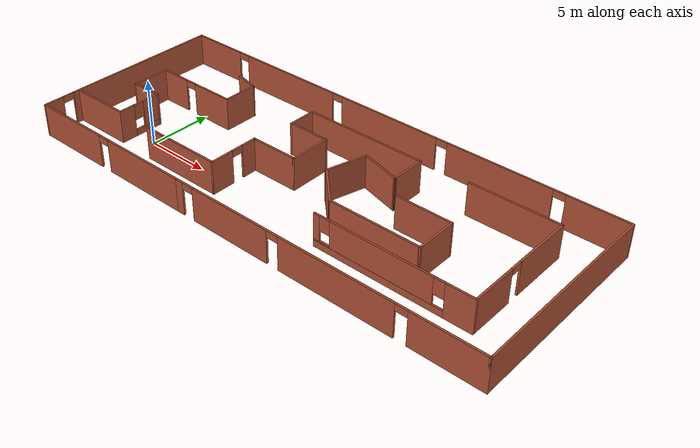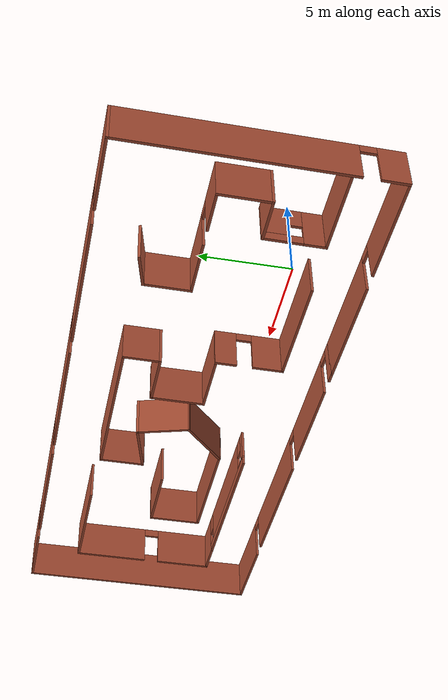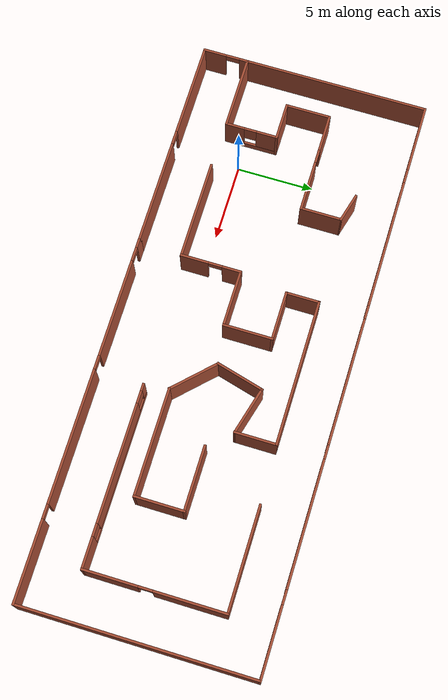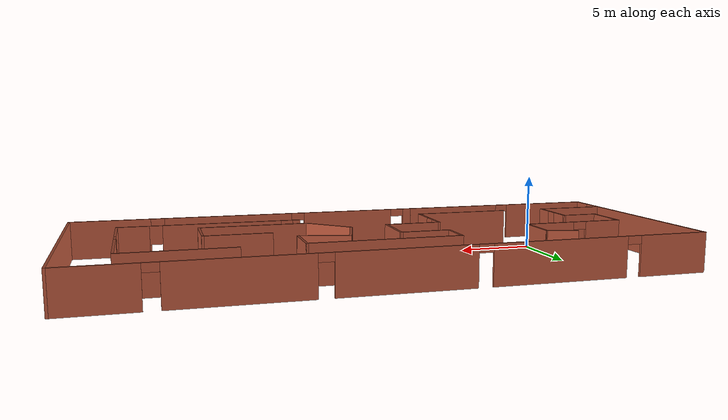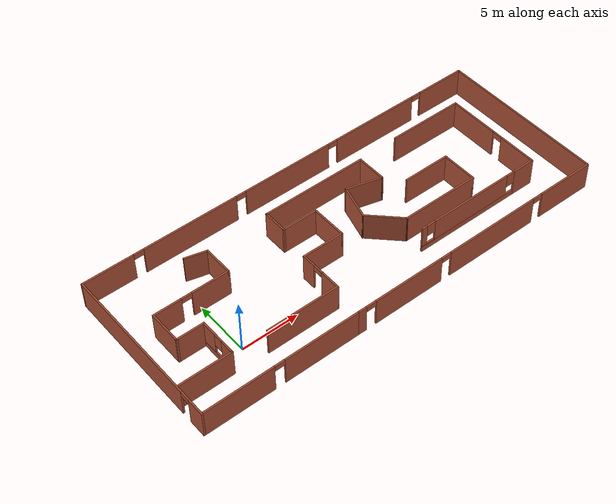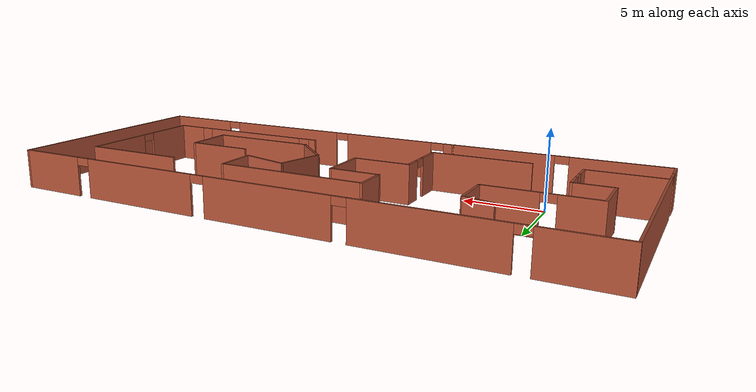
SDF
<?xml version='1.0'?>
<sdf version='1.5'>
  <model name='elektron_navigation_test'>
    <pose>12.265 3.185 0 0 -0 0</pose>
    <link name='Wall_1'>
      <pose>-11.725 -7.425 0 0 -0 0</pose>
      <visual name='Wall_1_Visual_0'>
        <pose>-3.85344 0 1.25 0 -0 0</pose>
        <geometry>
          <box>
            <size>6.04311 0.15 2.5</size>
          </box>
        </geometry>
        <material>
          <script>
            <uri>file://media/materials/scripts/gazebo.material</uri>
            <name>Gazebo/Bricks</name>
          </script>
          <ambient>0.996078 0.47451 0.0196078 1</ambient>
        </material>
      </visual>
      <collision name='Wall_1_Collision_0'>
        <geometry>
          <box>
            <size>6.04311 0.15 2.5</size>
          </box>
        </geometry>
        <pose>-3.85344 0 1.25 0 -0 0</pose>
      </collision>
      <visual name='Wall_1_Visual_1'>
        <pose>3.47156 0 1.25 0 -0 0</pose>
        <geometry>
          <box>
            <size>6.80689 0.15 2.5</size>
          </box>
        </geometry>
        <material>
          <script>
            <uri>file://media/materials/scripts/gazebo.material</uri>
            <name>Gazebo/Bricks</name>
          </script>
          <ambient>0.996078 0.47451 0.0196078 1</ambient>
        </material>
      </visual>
      <collision name='Wall_1_Collision_1'>
        <geometry>
          <box>
            <size>6.80689 0.15 2.5</size>
          </box>
        </geometry>
        <pose>3.47156 0 1.25 0 -0 0</pose>
      </collision>
      <visual name='Wall_1_Visual_2'>
        <pose>-0.381887 0 2.25 0 -0 0</pose>
        <geometry>
          <box>
            <size>0.9 0.15 0.5</size>
          </box>
        </geometry>
        <material>
          <script>
            <uri>file://media/materials/scripts/gazebo.material</uri>
            <name>Gazebo/Bricks</name>
          </script>
          <ambient>0.996078 0.47451 0.0196078 1</ambient>
        </material>
      </visual>
      <collision name='Wall_1_Collision_2'>
        <geometry>
          <box>
            <size>0.9 0.15 0.5</size>
          </box>
        </geometry>
        <pose>-0.381887 0 2.25 0 -0 0</pose>
      </collision>
    </link>
    <link name='Wall_10'>
      <collision name='Wall_10_Collision'>
        <geometry>
          <box>
            <size>3 0.15 2.5</size>
          </box>
        </geometry>
        <pose>0 0 1.25 0 -0 0</pose>
      </collision>
      <visual name='Wall_10_Visual'>
        <pose>0 0 1.25 0 -0 0</pose>
        <geometry>
          <box>
            <size>3 0.15 2.5</size>
          </box>
        </geometry>
        <material>
          <script>
            <uri>file://media/materials/scripts/gazebo.material</uri>
            <name>Gazebo/Bricks</name>
          </script>
          <ambient>1 1 1 1</ambient>
        </material>
      </visual>
      <pose>-16.3616 0.248937 0 0 -0 1.5708</pose>
    </link>
    <link name='Wall_11'>
      <pose>-13.0616 1.67394 0 0 -0 0</pose>
      <visual name='Wall_11_Visual_0'>
        <pose>-2.13139 0 1.25 0 -0 0</pose>
        <geometry>
          <box>
            <size>2.48722 0.15 2.5</size>
          </box>
        </geometry>
        <material>
          <script>
            <uri>file://media/materials/scripts/gazebo.material</uri>
            <name>Gazebo/Bricks</name>
          </script>
          <ambient>1 1 1 1</ambient>
        </material>
      </visual>
      <collision name='Wall_11_Collision_0'>
        <geometry>
          <box>
            <size>2.48722 0.15 2.5</size>
          </box>
        </geometry>
        <pose>-2.13139 0 1.25 0 -0 0</pose>
      </collision>
      <visual name='Wall_11_Visual_1'>
        <pose>1.69361 0 1.25 0 -0 0</pose>
        <geometry>
          <box>
            <size>3.36278 0.15 2.5</size>
          </box>
        </geometry>
        <material>
          <script>
            <uri>file://media/materials/scripts/gazebo.material</uri>
            <name>Gazebo/Bricks</name>
          </script>
          <ambient>1 1 1 1</ambient>
        </material>
      </visual>
      <collision name='Wall_11_Collision_1'>
        <geometry>
          <box>
            <size>3.36278 0.15 2.5</size>
          </box>
        </geometry>
        <pose>1.69361 0 1.25 0 -0 0</pose>
      </collision>
      <visual name='Wall_11_Visual_2'>
        <pose>-0.43778 0 2.25 0 -0 0</pose>
        <geometry>
          <box>
            <size>0.9 0.15 0.5</size>
          </box>
        </geometry>
        <material>
          <script>
            <uri>file://media/materials/scripts/gazebo.material</uri>
            <name>Gazebo/Bricks</name>
          </script>
          <ambient>1 1 1 1</ambient>
        </material>
      </visual>
      <collision name='Wall_11_Collision_2'>
        <geometry>
          <box>
            <size>0.9 0.15 0.5</size>
          </box>
        </geometry>
        <pose>-0.43778 0 2.25 0 -0 0</pose>
      </collision>
    </link>
    <link name='Wall_12'>
      <collision name='Wall_12_Collision'>
        <geometry>
          <box>
            <size>2.75 0.15 2.5</size>
          </box>
        </geometry>
        <pose>0 0 1.25 0 -0 0</pose>
      </collision>
      <visual name='Wall_12_Visual'>
        <pose>0 0 1.25 0 -0 0</pose>
        <geometry>
          <box>
            <size>2.75 0.15 2.5</size>
          </box>
        </geometry>
        <material>
          <script>
            <uri>file://media/materials/scripts/gazebo.material</uri>
            <name>Gazebo/Bricks</name>
          </script>
          <ambient>1 1 1 1</ambient>
        </material>
      </visual>
      <pose>-9.7616 2.97394 0 0 -0 1.5708</pose>
    </link>
    <link name='Wall_13'>
      <collision name='Wall_13_Collision'>
        <geometry>
          <box>
            <size>2 0.15 2.5</size>
          </box>
        </geometry>
        <pose>0 0 1.25 0 -0 0</pose>
      </collision>
      <visual name='Wall_13_Visual'>
        <pose>0 0 1.25 0 -0 0</pose>
        <geometry>
          <box>
            <size>2 0.15 2.5</size>
          </box>
        </geometry>
        <material>
          <script>
            <uri>file://media/materials/scripts/gazebo.material</uri>
            <name>Gazebo/Bricks</name>
          </script>
          <ambient>1 1 1 1</ambient>
        </material>
      </visual>
      <pose>-10.6551 4.51335 0 0 -0 2.87979</pose>
    </link>
    <link name='Wall_16'>
      <collision name='Wall_16_Collision'>
        <geometry>
          <box>
            <size>6.5 0.15 2.5</size>
          </box>
        </geometry>
        <pose>0 0 1.25 0 -0 0</pose>
      </collision>
      <visual name='Wall_16_Visual'>
        <pose>0 0 1.25 0 -0 0</pose>
        <geometry>
          <box>
            <size>6.5 0.15 2.5</size>
          </box>
        </geometry>
        <material>
          <script>
            <uri>file://media/materials/scripts/gazebo.material</uri>
            <name>Gazebo/Bricks</name>
          </script>
          <ambient>0.996078 0.47451 0.0196078 1</ambient>
        </material>
      </visual>
      <pose>-7.76167 -4.60035 0 0 -0 0</pose>
    </link>
    <link name='Wall_17'>
      <pose>-4.58667 -2.67535 0 0 -0 1.5708</pose>
      <visual name='Wall_17_Visual_0'>
        <pose>-1.08392 0 1.25 0 -0 0</pose>
        <geometry>
          <box>
            <size>1.83216 0.15 2.5</size>
          </box>
        </geometry>
        <material>
          <script>
            <uri>file://media/materials/scripts/gazebo.material</uri>
            <name>Gazebo/Bricks</name>
          </script>
          <ambient>1 1 1 1</ambient>
        </material>
      </visual>
      <collision name='Wall_17_Collision_0'>
        <geometry>
          <box>
            <size>1.83216 0.15 2.5</size>
          </box>
        </geometry>
        <pose>-1.08392 0 1.25 0 -0 0</pose>
      </collision>
      <visual name='Wall_17_Visual_1'>
        <pose>1.36608 0 1.25 0 -0 0</pose>
        <geometry>
          <box>
            <size>1.26784 0.15 2.5</size>
          </box>
        </geometry>
        <material>
          <script>
            <uri>file://media/materials/scripts/gazebo.material</uri>
            <name>Gazebo/Bricks</name>
          </script>
          <ambient>1 1 1 1</ambient>
        </material>
      </visual>
      <collision name='Wall_17_Collision_1'>
        <geometry>
          <box>
            <size>1.26784 0.15 2.5</size>
          </box>
        </geometry>
        <pose>1.36608 0 1.25 0 -0 0</pose>
      </collision>
      <visual name='Wall_17_Visual_2'>
        <pose>0.282163 0 2.25 0 -0 0</pose>
        <geometry>
          <box>
            <size>0.9 0.15 0.5</size>
          </box>
        </geometry>
        <material>
          <script>
            <uri>file://media/materials/scripts/gazebo.material</uri>
            <name>Gazebo/Bricks</name>
          </script>
          <ambient>1 1 1 1</ambient>
        </material>
      </visual>
      <collision name='Wall_17_Collision_2'>
        <geometry>
          <box>
            <size>0.9 0.15 0.5</size>
          </box>
        </geometry>
        <pose>0.282163 0 2.25 0 -0 0</pose>
      </collision>
    </link>
    <link name='Wall_18'>
      <collision name='Wall_18_Collision'>
        <geometry>
          <box>
            <size>3.75 0.15 2.5</size>
          </box>
        </geometry>
        <pose>0 0 1.25 0 -0 0</pose>
      </collision>
      <visual name='Wall_18_Visual'>
        <pose>0 0 1.25 0 -0 0</pose>
        <geometry>
          <box>
            <size>3.75 0.15 2.5</size>
          </box>
        </geometry>
        <material>
          <script>
            <uri>file://media/materials/scripts/gazebo.material</uri>
            <name>Gazebo/Bricks</name>
          </script>
          <ambient>1 1 1 1</ambient>
        </material>
      </visual>
      <pose>-2.78667 -0.75035 0 0 -0 0</pose>
    </link>
    <link name='Wall_19'>
      <collision name='Wall_19_Collision'>
        <geometry>
          <box>
            <size>3.25 0.15 2.5</size>
          </box>
        </geometry>
        <pose>0 0 1.25 0 -0 0</pose>
      </collision>
      <visual name='Wall_19_Visual'>
        <pose>0 0 1.25 0 -0 0</pose>
        <geometry>
          <box>
            <size>3.25 0.15 2.5</size>
          </box>
        </geometry>
        <material>
          <script>
            <uri>file://media/materials/scripts/gazebo.material</uri>
            <name>Gazebo/Bricks</name>
          </script>
          <ambient>1 1 1 1</ambient>
        </material>
      </visual>
      <pose>-0.98667 0.79965 0 0 -0 1.5708</pose>
    </link>
    <link name='Wall_2'>
      <pose>6.875 -7.425 0 0 -0 0</pose>
      <visual name='Wall_2_Visual_0'>
        <pose>-11.5003 0 1.25 0 -0 0</pose>
        <geometry>
          <box>
            <size>0.749377 0.15 2.5</size>
          </box>
        </geometry>
        <material>
          <script>
            <uri>file://media/materials/scripts/gazebo.material</uri>
            <name>Gazebo/Bricks</name>
          </script>
          <ambient>0.996078 0.47451 0.0196078 1</ambient>
        </material>
      </visual>
      <collision name='Wall_2_Collision_0'>
        <geometry>
          <box>
            <size>0.749377 0.15 2.5</size>
          </box>
        </geometry>
        <pose>-11.5003 0 1.25 0 -0 0</pose>
      </collision>
      <visual name='Wall_2_Visual_1'>
        <pose>-7.01471 0 1.25 0 -0 0</pose>
        <geometry>
          <box>
            <size>6.42182 0.15 2.5</size>
          </box>
        </geometry>
        <material>
          <script>
            <uri>file://media/materials/scripts/gazebo.material</uri>
            <name>Gazebo/Bricks</name>
          </script>
          <ambient>0.996078 0.47451 0.0196078 1</ambient>
        </material>
      </visual>
      <collision name='Wall_2_Collision_1'>
        <geometry>
          <box>
            <size>6.42182 0.15 2.5</size>
          </box>
        </geometry>
        <pose>-7.01471 0 1.25 0 -0 0</pose>
      </collision>
      <visual name='Wall_2_Visual_2'>
        <pose>1.4146 0 1.25 0 -0 0</pose>
        <geometry>
          <box>
            <size>8.63682 0.15 2.5</size>
          </box>
        </geometry>
        <material>
          <script>
            <uri>file://media/materials/scripts/gazebo.material</uri>
            <name>Gazebo/Bricks</name>
          </script>
          <ambient>0.996078 0.47451 0.0196078 1</ambient>
        </material>
      </visual>
      <collision name='Wall_2_Collision_2'>
        <geometry>
          <box>
            <size>8.63682 0.15 2.5</size>
          </box>
        </geometry>
        <pose>1.4146 0 1.25 0 -0 0</pose>
      </collision>
      <visual name='Wall_2_Visual_3'>
        <pose>9.25401 0 1.25 0 -0 0</pose>
        <geometry>
          <box>
            <size>5.24198 0.15 2.5</size>
          </box>
        </geometry>
        <material>
          <script>
            <uri>file://media/materials/scripts/gazebo.material</uri>
            <name>Gazebo/Bricks</name>
          </script>
          <ambient>0.996078 0.47451 0.0196078 1</ambient>
        </material>
      </visual>
      <collision name='Wall_2_Collision_3'>
        <geometry>
          <box>
            <size>5.24198 0.15 2.5</size>
          </box>
        </geometry>
        <pose>9.25401 0 1.25 0 -0 0</pose>
      </collision>
      <visual name='Wall_2_Visual_4'>
        <pose>-10.6756 0 2.25 0 -0 0</pose>
        <geometry>
          <box>
            <size>0.9 0.15 0.5</size>
          </box>
        </geometry>
        <material>
          <script>
            <uri>file://media/materials/scripts/gazebo.material</uri>
            <name>Gazebo/Bricks</name>
          </script>
          <ambient>0.996078 0.47451 0.0196078 1</ambient>
        </material>
      </visual>
      <collision name='Wall_2_Collision_4'>
        <geometry>
          <box>
            <size>0.9 0.15 0.5</size>
          </box>
        </geometry>
        <pose>-10.6756 0 2.25 0 -0 0</pose>
      </collision>
      <visual name='Wall_2_Visual_5'>
        <pose>-3.35381 0 2.25 0 -0 0</pose>
        <geometry>
          <box>
            <size>0.9 0.15 0.5</size>
          </box>
        </geometry>
        <material>
          <script>
            <uri>file://media/materials/scripts/gazebo.material</uri>
            <name>Gazebo/Bricks</name>
          </script>
          <ambient>0.996078 0.47451 0.0196078 1</ambient>
        </material>
      </visual>
      <collision name='Wall_2_Collision_5'>
        <geometry>
          <box>
            <size>0.9 0.15 0.5</size>
          </box>
        </geometry>
        <pose>-3.35381 0 2.25 0 -0 0</pose>
      </collision>
      <visual name='Wall_2_Visual_6'>
        <pose>6.18302 0 2.25 0 -0 0</pose>
        <geometry>
          <box>
            <size>0.9 0.15 0.5</size>
          </box>
        </geometry>
        <material>
          <script>
            <uri>file://media/materials/scripts/gazebo.material</uri>
            <name>Gazebo/Bricks</name>
          </script>
          <ambient>0.996078 0.47451 0.0196078 1</ambient>
        </material>
      </visual>
      <collision name='Wall_2_Collision_6'>
        <geometry>
          <box>
            <size>0.9 0.15 0.5</size>
          </box>
        </geometry>
        <pose>6.18302 0 2.25 0 -0 0</pose>
      </collision>
    </link>
    <link name='Wall_20'>
      <collision name='Wall_20_Collision'>
        <geometry>
          <box>
            <size>3.25 0.15 2.5</size>
          </box>
        </geometry>
        <pose>0 0 1.25 0 -0 0</pose>
      </collision>
      <visual name='Wall_20_Visual'>
        <pose>0 0 1.25 0 -0 0</pose>
        <geometry>
          <box>
            <size>3.25 0.15 2.5</size>
          </box>
        </geometry>
        <material>
          <script>
            <uri>file://media/materials/scripts/gazebo.material</uri>
            <name>Gazebo/Bricks</name>
          </script>
          <ambient>1 1 1 1</ambient>
        </material>
      </visual>
      <pose>-2.53667 2.34965 0 0 -0 3.14159</pose>
    </link>
    <link name='Wall_21'>
      <collision name='Wall_21_Collision'>
        <geometry>
          <box>
            <size>2.25 0.15 2.5</size>
          </box>
        </geometry>
        <pose>0 0 1.25 0 -0 0</pose>
      </collision>
      <visual name='Wall_21_Visual'>
        <pose>0 0 1.25 0 -0 0</pose>
        <geometry>
          <box>
            <size>2.25 0.15 2.5</size>
          </box>
        </geometry>
        <material>
          <script>
            <uri>file://media/materials/scripts/gazebo.material</uri>
            <name>Gazebo/Bricks</name>
          </script>
          <ambient>1 1 1 1</ambient>
        </material>
      </visual>
      <pose>-4.08667 3.39965 0 0 -0 1.5708</pose>
    </link>
    <link name='Wall_22'>
      <collision name='Wall_22_Collision'>
        <geometry>
          <box>
            <size>9.5 0.15 2.5</size>
          </box>
        </geometry>
        <pose>0 0 1.25 0 -0 0</pose>
      </collision>
      <visual name='Wall_22_Visual'>
        <pose>0 0 1.25 0 -0 0</pose>
        <geometry>
          <box>
            <size>9.5 0.15 2.5</size>
          </box>
        </geometry>
        <material>
          <script>
            <uri>file://media/materials/scripts/gazebo.material</uri>
            <name>Gazebo/Bricks</name>
          </script>
          <ambient>1 1 1 1</ambient>
        </material>
      </visual>
      <pose>0.588331 4.44965 0 0 -0 0</pose>
    </link>
    <link name='Wall_23'>
      <collision name='Wall_23_Collision'>
        <geometry>
          <box>
            <size>2.75 0.15 2.5</size>
          </box>
        </geometry>
        <pose>0 0 1.25 0 -0 0</pose>
      </collision>
      <visual name='Wall_23_Visual'>
        <pose>0 0 1.25 0 -0 0</pose>
        <geometry>
          <box>
            <size>2.75 0.15 2.5</size>
          </box>
        </geometry>
        <material>
          <script>
            <uri>file://media/materials/scripts/gazebo.material</uri>
            <name>Gazebo/Bricks</name>
          </script>
          <ambient>1 1 1 1</ambient>
        </material>
      </visual>
      <pose>5.26333 3.14965 0 0 0 -1.5708</pose>
    </link>
    <link name='Wall_24'>
      <collision name='Wall_24_Collision'>
        <geometry>
          <box>
            <size>3.25 0.15 2.5</size>
          </box>
        </geometry>
        <pose>0 0 1.25 0 -0 0</pose>
      </collision>
      <visual name='Wall_24_Visual'>
        <pose>0 0 1.25 0 -0 0</pose>
        <geometry>
          <box>
            <size>3.25 0.15 2.5</size>
          </box>
        </geometry>
        <material>
          <script>
            <uri>file://media/materials/scripts/gazebo.material</uri>
            <name>Gazebo/Bricks</name>
          </script>
          <ambient>1 1 1 1</ambient>
        </material>
      </visual>
      <pose>3.76615 2.25082 0 0 -0 2.87979</pose>
    </link>
    <link name='Wall_25'>
      <collision name='Wall_25_Collision'>
        <geometry>
          <box>
            <size>3.25 0.15 2.5</size>
          </box>
        </geometry>
        <pose>0 0 1.25 0 -0 0</pose>
      </collision>
      <visual name='Wall_25_Visual'>
        <pose>0 0 1.25 0 -0 0</pose>
        <geometry>
          <box>
            <size>3.25 0.15 2.5</size>
          </box>
        </geometry>
        <material>
          <script>
            <uri>file://media/materials/scripts/gazebo.material</uri>
            <name>Gazebo/Bricks</name>
          </script>
          <ambient>1 1 1 1</ambient>
        </material>
      </visual>
      <pose>1.86779 1.1548 0 0 0 -1.8326</pose>
    </link>
    <link name='Wall_26'>
      <collision name='Wall_26_Collision'>
        <geometry>
          <box>
            <size>3.5 0.15 2.5</size>
          </box>
        </geometry>
        <pose>0 0 1.25 0 -0 0</pose>
      </collision>
      <visual name='Wall_26_Visual'>
        <pose>0 0 1.25 0 -0 0</pose>
        <geometry>
          <box>
            <size>3.5 0.15 2.5</size>
          </box>
        </geometry>
        <material>
          <script>
            <uri>file://media/materials/scripts/gazebo.material</uri>
            <name>Gazebo/Bricks</name>
          </script>
          <ambient>1 1 1 1</ambient>
        </material>
      </visual>
      <pose>2.65103 -1.52679 0 0 0 -0.785398</pose>
    </link>
    <link name='Wall_27'>
      <collision name='Wall_27_Collision'>
        <geometry>
          <box>
            <size>7 0.15 2.5</size>
          </box>
        </geometry>
        <pose>0 0 1.25 0 -0 0</pose>
      </collision>
      <visual name='Wall_27_Visual'>
        <pose>0 0 1.25 0 -0 0</pose>
        <geometry>
          <box>
            <size>7 0.15 2.5</size>
          </box>
        </geometry>
        <material>
          <script>
            <uri>file://media/materials/scripts/gazebo.material</uri>
            <name>Gazebo/Bricks</name>
          </script>
          <ambient>1 1 1 1</ambient>
        </material>
      </visual>
      <pose>7.26043 -2.71119 0 0 -0 0</pose>
    </link>
    <link name='Wall_28'>
      <collision name='Wall_28_Collision'>
        <geometry>
          <box>
            <size>3.25 0.15 2.5</size>
          </box>
        </geometry>
        <pose>0 0 1.25 0 -0 0</pose>
      </collision>
      <visual name='Wall_28_Visual'>
        <pose>0 0 1.25 0 -0 0</pose>
        <geometry>
          <box>
            <size>3.25 0.15 2.5</size>
          </box>
        </geometry>
        <material>
          <script>
            <uri>file://media/materials/scripts/gazebo.material</uri>
            <name>Gazebo/Bricks</name>
          </script>
          <ambient>1 1 1 1</ambient>
        </material>
      </visual>
      <pose>10.6854 -1.16119 0 0 -0 1.5708</pose>
    </link>
    <link name='Wall_29'>
      <collision name='Wall_29_Collision'>
        <geometry>
          <box>
            <size>4.25 0.15 2.5</size>
          </box>
        </geometry>
        <pose>0 0 1.25 0 -0 0</pose>
      </collision>
      <visual name='Wall_29_Visual'>
        <pose>0 0 1.25 0 -0 0</pose>
        <geometry>
          <box>
            <size>4.25 0.15 2.5</size>
          </box>
        </geometry>
        <material>
          <script>
            <uri>file://media/materials/scripts/gazebo.material</uri>
            <name>Gazebo/Bricks</name>
          </script>
          <ambient>1 1 1 1</ambient>
        </material>
      </visual>
      <pose>8.63543 0.388811 0 0 -0 3.14159</pose>
    </link>
    <link name='Wall_3'>
      <collision name='Wall_3_Collision'>
        <geometry>
          <box>
            <size>15 0.15 2.5</size>
          </box>
        </geometry>
        <pose>0 0 1.25 0 -0 0</pose>
      </collision>
      <visual name='Wall_3_Visual'>
        <pose>0 0 1.25 0 -0 0</pose>
        <geometry>
          <box>
            <size>15 0.15 2.5</size>
          </box>
        </geometry>
        <material>
          <script>
            <uri>file://media/materials/scripts/gazebo.material</uri>
            <name>Gazebo/Bricks</name>
          </script>
          <ambient>1 1 1 1</ambient>
        </material>
      </visual>
      <pose>18.675 -0 0 0 -0 1.5708</pose>
    </link>
    <link name='Wall_31'>
      <collision name='Wall_31_Collision'>
        <geometry>
          <box>
            <size>6.75 0.15 2.5</size>
          </box>
        </geometry>
        <pose>0 0 1.25 0 -0 0</pose>
      </collision>
      <visual name='Wall_31_Visual'>
        <pose>0 0 1.25 0 -0 0</pose>
        <geometry>
          <box>
            <size>6.75 0.15 2.5</size>
          </box>
        </geometry>
        <material>
          <script>
            <uri>file://media/materials/scripts/gazebo.material</uri>
            <name>Gazebo/Bricks</name>
          </script>
          <ambient>1 1 1 1</ambient>
        </material>
      </visual>
      <pose>12.3315 4.56084 0 0 -0 0</pose>
    </link>
    <link name='Wall_32'>
      <pose>15.6315 0.135842 0 0 0 -1.5708</pose>
      <visual name='Wall_32_Visual_0'>
        <pose>-2.20108 0 1.25 0 -0 0</pose>
        <geometry>
          <box>
            <size>4.59783 0.15 2.5</size>
          </box>
        </geometry>
        <material>
          <script>
            <uri>file://media/materials/scripts/gazebo.material</uri>
            <name>Gazebo/Bricks</name>
          </script>
          <ambient>1 1 1 1</ambient>
        </material>
      </visual>
      <collision name='Wall_32_Collision_0'>
        <geometry>
          <box>
            <size>4.59783 0.15 2.5</size>
          </box>
        </geometry>
        <pose>-2.20108 0 1.25 0 -0 0</pose>
      </collision>
      <visual name='Wall_32_Visual_1'>
        <pose>2.74892 0 1.25 0 -0 0</pose>
        <geometry>
          <box>
            <size>3.50217 0.15 2.5</size>
          </box>
        </geometry>
        <material>
          <script>
            <uri>file://media/materials/scripts/gazebo.material</uri>
            <name>Gazebo/Bricks</name>
          </script>
          <ambient>1 1 1 1</ambient>
        </material>
      </visual>
      <collision name='Wall_32_Collision_1'>
        <geometry>
          <box>
            <size>3.50217 0.15 2.5</size>
          </box>
        </geometry>
        <pose>2.74892 0 1.25 0 -0 0</pose>
      </collision>
      <visual name='Wall_32_Visual_2'>
        <pose>0.547831 0 2.25 0 -0 0</pose>
        <geometry>
          <box>
            <size>0.9 0.15 0.5</size>
          </box>
        </geometry>
        <material>
          <script>
            <uri>file://media/materials/scripts/gazebo.material</uri>
            <name>Gazebo/Bricks</name>
          </script>
          <ambient>1 1 1 1</ambient>
        </material>
      </visual>
      <collision name='Wall_32_Collision_2'>
        <geometry>
          <box>
            <size>0.9 0.15 0.5</size>
          </box>
        </geometry>
        <pose>0.547831 0 2.25 0 -0 0</pose>
      </collision>
    </link>
    <link name='Wall_33'>
      <pose>9.83155 -4.28916 0 0 -0 3.14159</pose>
      <visual name='Wall_33_Visual_0'>
        <pose>-4.84302 0 1.25 0 -0 0</pose>
        <geometry>
          <box>
            <size>2.06395 0.15 2.5</size>
          </box>
        </geometry>
        <material>
          <script>
            <uri>file://media/materials/scripts/gazebo.material</uri>
            <name>Gazebo/Bricks</name>
          </script>
          <ambient>1 1 1 1</ambient>
        </material>
      </visual>
      <collision name='Wall_33_Collision_0'>
        <geometry>
          <box>
            <size>2.06395 0.15 2.5</size>
          </box>
        </geometry>
        <pose>-4.84302 0 1.25 0 -0 0</pose>
      </collision>
      <visual name='Wall_33_Visual_1'>
        <pose>1.03198 0 0.25 0 -0 0</pose>
        <geometry>
          <box>
            <size>9.68605 0.15 0.5</size>
          </box>
        </geometry>
        <material>
          <script>
            <uri>file://media/materials/scripts/gazebo.material</uri>
            <name>Gazebo/Bricks</name>
          </script>
          <ambient>1 1 1 1</ambient>
        </material>
      </visual>
      <collision name='Wall_33_Collision_1'>
        <geometry>
          <box>
            <size>9.68605 0.15 0.5</size>
          </box>
        </geometry>
        <pose>1.03198 0 0.25 0 -0 0</pose>
      </collision>
      <visual name='Wall_33_Visual_2'>
        <pose>0.785379 0 1.5 0 -0 0</pose>
        <geometry>
          <box>
            <size>7.59286 0.15 2</size>
          </box>
        </geometry>
        <material>
          <script>
            <uri>file://media/materials/scripts/gazebo.material</uri>
            <name>Gazebo/Bricks</name>
          </script>
          <ambient>1 1 1 1</ambient>
        </material>
      </visual>
      <collision name='Wall_33_Collision_2'>
        <geometry>
          <box>
            <size>7.59286 0.15 2</size>
          </box>
        </geometry>
        <pose>0.785379 0 1.5 0 -0 0</pose>
      </collision>
      <visual name='Wall_33_Visual_3'>
        <pose>5.22841 0 0.55 0 -0 0</pose>
        <geometry>
          <box>
            <size>1.29319 0.15 0.1</size>
          </box>
        </geometry>
        <material>
          <script>
            <uri>file://media/materials/scripts/gazebo.material</uri>
            <name>Gazebo/Bricks</name>
          </script>
          <ambient>1 1 1 1</ambient>
        </material>
      </visual>
      <collision name='Wall_33_Collision_3'>
        <geometry>
          <box>
            <size>1.29319 0.15 0.1</size>
          </box>
        </geometry>
        <pose>5.22841 0 0.55 0 -0 0</pose>
      </collision>
      <visual name='Wall_33_Visual_4'>
        <pose>5.6284 0 1.55 0 -0 0</pose>
        <geometry>
          <box>
            <size>0.49319 0.15 1.9</size>
          </box>
        </geometry>
        <material>
          <script>
            <uri>file://media/materials/scripts/gazebo.material</uri>
            <name>Gazebo/Bricks</name>
          </script>
          <ambient>1 1 1 1</ambient>
        </material>
      </visual>
      <collision name='Wall_33_Collision_4'>
        <geometry>
          <box>
            <size>0.49319 0.15 1.9</size>
          </box>
        </geometry>
        <pose>5.6284 0 1.55 0 -0 0</pose>
      </collision>
      <visual name='Wall_33_Visual_5'>
        <pose>-3.41105 0 1.9 0 -0 0</pose>
        <geometry>
          <box>
            <size>0.8 0.15 1.2</size>
          </box>
        </geometry>
        <material>
          <script>
            <uri>file://media/materials/scripts/gazebo.material</uri>
            <name>Gazebo/Bricks</name>
          </script>
          <ambient>1 1 1 1</ambient>
        </material>
      </visual>
      <collision name='Wall_33_Collision_5'>
        <geometry>
          <box>
            <size>0.8 0.15 1.2</size>
          </box>
        </geometry>
        <pose>-3.41105 0 1.9 0 -0 0</pose>
      </collision>
      <visual name='Wall_33_Visual_6'>
        <pose>4.98181 0 1.95 0 -0 0</pose>
        <geometry>
          <box>
            <size>0.8 0.15 1.1</size>
          </box>
        </geometry>
        <material>
          <script>
            <uri>file://media/materials/scripts/gazebo.material</uri>
            <name>Gazebo/Bricks</name>
          </script>
          <ambient>1 1 1 1</ambient>
        </material>
      </visual>
      <collision name='Wall_33_Collision_6'>
        <geometry>
          <box>
            <size>0.8 0.15 1.1</size>
          </box>
        </geometry>
        <pose>4.98181 0 1.95 0 -0 0</pose>
      </collision>
    </link>
    <link name='Wall_4'>
      <pose>0 7.425 0 0 -0 3.14159</pose>
      <visual name='Wall_4_Visual_0'>
        <pose>-16.4798 0 1.25 0 -0 0</pose>
        <geometry>
          <box>
            <size>4.54036 0.15 2.5</size>
          </box>
        </geometry>
        <material>
          <script>
            <uri>file://media/materials/scripts/gazebo.material</uri>
            <name>Gazebo/Bricks</name>
          </script>
          <ambient>1 1 1 1</ambient>
        </material>
      </visual>
      <collision name='Wall_4_Collision_0'>
        <geometry>
          <box>
            <size>4.54036 0.15 2.5</size>
          </box>
        </geometry>
        <pose>-16.4798 0 1.25 0 -0 0</pose>
      </collision>
      <visual name='Wall_4_Visual_1'>
        <pose>-9.29372 0 1.25 0 -0 0</pose>
        <geometry>
          <box>
            <size>8.03185 0.15 2.5</size>
          </box>
        </geometry>
        <material>
          <script>
            <uri>file://media/materials/scripts/gazebo.material</uri>
            <name>Gazebo/Bricks</name>
          </script>
          <ambient>1 1 1 1</ambient>
        </material>
      </visual>
      <collision name='Wall_4_Collision_1'>
        <geometry>
          <box>
            <size>8.03185 0.15 2.5</size>
          </box>
        </geometry>
        <pose>-9.29372 0 1.25 0 -0 0</pose>
      </collision>
      <visual name='Wall_4_Visual_2'>
        <pose>-0.254253 0 1.25 0 -0 0</pose>
        <geometry>
          <box>
            <size>8.24708 0.15 2.5</size>
          </box>
        </geometry>
        <material>
          <script>
            <uri>file://media/materials/scripts/gazebo.material</uri>
            <name>Gazebo/Bricks</name>
          </script>
          <ambient>1 1 1 1</ambient>
        </material>
      </visual>
      <collision name='Wall_4_Collision_2'>
        <geometry>
          <box>
            <size>8.24708 0.15 2.5</size>
          </box>
        </geometry>
        <pose>-0.254253 0 1.25 0 -0 0</pose>
      </collision>
      <visual name='Wall_4_Visual_3'>
        <pose>9.05424 0 1.25 0 -0 0</pose>
        <geometry>
          <box>
            <size>8.56991 0.15 2.5</size>
          </box>
        </geometry>
        <material>
          <script>
            <uri>file://media/materials/scripts/gazebo.material</uri>
            <name>Gazebo/Bricks</name>
          </script>
          <ambient>1 1 1 1</ambient>
        </material>
      </visual>
      <collision name='Wall_4_Collision_3'>
        <geometry>
          <box>
            <size>8.56991 0.15 2.5</size>
          </box>
        </geometry>
        <pose>9.05424 0 1.25 0 -0 0</pose>
      </collision>
      <visual name='Wall_4_Visual_4'>
        <pose>16.4946 0 1.25 0 -0 0</pose>
        <geometry>
          <box>
            <size>4.5108 0.15 2.5</size>
          </box>
        </geometry>
        <material>
          <script>
            <uri>file://media/materials/scripts/gazebo.material</uri>
            <name>Gazebo/Bricks</name>
          </script>
          <ambient>1 1 1 1</ambient>
        </material>
      </visual>
      <collision name='Wall_4_Collision_4'>
        <geometry>
          <box>
            <size>4.5108 0.15 2.5</size>
          </box>
        </geometry>
        <pose>16.4946 0 1.25 0 -0 0</pose>
      </collision>
      <visual name='Wall_4_Visual_5'>
        <pose>-13.7596 0 2.25 0 -0 0</pose>
        <geometry>
          <box>
            <size>0.9 0.15 0.5</size>
          </box>
        </geometry>
        <material>
          <script>
            <uri>file://media/materials/scripts/gazebo.material</uri>
            <name>Gazebo/Bricks</name>
          </script>
          <ambient>1 1 1 1</ambient>
        </material>
      </visual>
      <collision name='Wall_4_Collision_5'>
        <geometry>
          <box>
            <size>0.9 0.15 0.5</size>
          </box>
        </geometry>
        <pose>-13.7596 0 2.25 0 -0 0</pose>
      </collision>
      <visual name='Wall_4_Visual_6'>
        <pose>-4.82779 0 2.25 0 -0 0</pose>
        <geometry>
          <box>
            <size>0.9 0.15 0.5</size>
          </box>
        </geometry>
        <material>
          <script>
            <uri>file://media/materials/scripts/gazebo.material</uri>
            <name>Gazebo/Bricks</name>
          </script>
          <ambient>1 1 1 1</ambient>
        </material>
      </visual>
      <collision name='Wall_4_Collision_6'>
        <geometry>
          <box>
            <size>0.9 0.15 0.5</size>
          </box>
        </geometry>
        <pose>-4.82779 0 2.25 0 -0 0</pose>
      </collision>
      <visual name='Wall_4_Visual_7'>
        <pose>4.31928 0 2.25 0 -0 0</pose>
        <geometry>
          <box>
            <size>0.9 0.15 0.5</size>
          </box>
        </geometry>
        <material>
          <script>
            <uri>file://media/materials/scripts/gazebo.material</uri>
            <name>Gazebo/Bricks</name>
          </script>
          <ambient>1 1 1 1</ambient>
        </material>
      </visual>
      <collision name='Wall_4_Collision_7'>
        <geometry>
          <box>
            <size>0.9 0.15 0.5</size>
          </box>
        </geometry>
        <pose>4.31928 0 2.25 0 -0 0</pose>
      </collision>
      <visual name='Wall_4_Visual_8'>
        <pose>13.7892 0 2.25 0 -0 0</pose>
        <geometry>
          <box>
            <size>0.9 0.15 0.5</size>
          </box>
        </geometry>
        <material>
          <script>
            <uri>file://media/materials/scripts/gazebo.material</uri>
            <name>Gazebo/Bricks</name>
          </script>
          <ambient>1 1 1 1</ambient>
        </material>
      </visual>
      <collision name='Wall_4_Collision_8'>
        <geometry>
          <box>
            <size>0.9 0.15 0.5</size>
          </box>
        </geometry>
        <pose>13.7892 0 2.25 0 -0 0</pose>
      </collision>
    </link>
    <link name='Wall_5'>
      <pose>-18.675 -0 0 0 0 -1.5708</pose>
      <visual name='Wall_5_Visual_0'>
        <pose>-1.2222 0 1.25 0 -0 0</pose>
        <geometry>
          <box>
            <size>12.5556 0.15 2.5</size>
          </box>
        </geometry>
        <material>
          <script>
            <uri>file://media/materials/scripts/gazebo.material</uri>
            <name>Gazebo/Bricks</name>
          </script>
          <ambient>1 1 1 1</ambient>
        </material>
      </visual>
      <collision name='Wall_5_Collision_0'>
        <geometry>
          <box>
            <size>12.5556 0.15 2.5</size>
          </box>
        </geometry>
        <pose>-1.2222 0 1.25 0 -0 0</pose>
      </collision>
      <visual name='Wall_5_Visual_1'>
        <pose>6.7278 0 1.25 0 -0 0</pose>
        <geometry>
          <box>
            <size>1.54439 0.15 2.5</size>
          </box>
        </geometry>
        <material>
          <script>
            <uri>file://media/materials/scripts/gazebo.material</uri>
            <name>Gazebo/Bricks</name>
          </script>
          <ambient>1 1 1 1</ambient>
        </material>
      </visual>
      <collision name='Wall_5_Collision_1'>
        <geometry>
          <box>
            <size>1.54439 0.15 2.5</size>
          </box>
        </geometry>
        <pose>6.7278 0 1.25 0 -0 0</pose>
      </collision>
      <visual name='Wall_5_Visual_2'>
        <pose>5.50561 0 2.25 0 -0 0</pose>
        <geometry>
          <box>
            <size>0.9 0.15 0.5</size>
          </box>
        </geometry>
        <material>
          <script>
            <uri>file://media/materials/scripts/gazebo.material</uri>
            <name>Gazebo/Bricks</name>
          </script>
          <ambient>1 1 1 1</ambient>
        </material>
      </visual>
      <collision name='Wall_5_Collision_2'>
        <geometry>
          <box>
            <size>0.9 0.15 0.5</size>
          </box>
        </geometry>
        <pose>5.50561 0 2.25 0 -0 0</pose>
      </collision>
    </link>
    <link name='Wall_7'>
      <collision name='Wall_7_Collision'>
        <geometry>
          <box>
            <size>4.75 0.15 2.5</size>
          </box>
        </geometry>
        <pose>0 0 1.25 0 -0 0</pose>
      </collision>
      <visual name='Wall_7_Visual'>
        <pose>0 0 1.25 0 -0 0</pose>
        <geometry>
          <box>
            <size>4.75 0.15 2.5</size>
          </box>
        </geometry>
        <material>
          <script>
            <uri>file://media/materials/scripts/gazebo.material</uri>
            <name>Gazebo/Bricks</name>
          </script>
          <ambient>1 1 1 1</ambient>
        </material>
      </visual>
      <pose>-16.3116 -4.52606 0 0 -0 0</pose>
    </link>
    <link name='Wall_8'>
      <pose>-14.0116 -2.85106 0 0 -0 1.5708</pose>
      <visual name='Wall_8_Visual_0'>
        <pose>-1.10955 0 1.25 0 -0 0</pose>
        <geometry>
          <box>
            <size>1.28089 0.15 2.5</size>
          </box>
        </geometry>
        <material>
          <script>
            <uri>file://media/materials/scripts/gazebo.material</uri>
            <name>Gazebo/Bricks</name>
          </script>
          <ambient>0.996078 0.47451 0.0196078 1</ambient>
        </material>
      </visual>
      <collision name='Wall_8_Collision_0'>
        <geometry>
          <box>
            <size>1.28089 0.15 2.5</size>
          </box>
        </geometry>
        <pose>-1.10955 0 1.25 0 -0 0</pose>
      </collision>
      <visual name='Wall_8_Visual_1'>
        <pose>0.640447 0 0.25 0 -0 0</pose>
        <geometry>
          <box>
            <size>2.2191 0.15 0.5</size>
          </box>
        </geometry>
        <material>
          <script>
            <uri>file://media/materials/scripts/gazebo.material</uri>
            <name>Gazebo/Bricks</name>
          </script>
          <ambient>0.996078 0.47451 0.0196078 1</ambient>
        </material>
      </visual>
      <collision name='Wall_8_Collision_1'>
        <geometry>
          <box>
            <size>2.2191 0.15 0.5</size>
          </box>
        </geometry>
        <pose>0.640447 0 0.25 0 -0 0</pose>
      </collision>
      <visual name='Wall_8_Visual_2'>
        <pose>1.04045 0 1.5 0 -0 0</pose>
        <geometry>
          <box>
            <size>1.41911 0.15 2</size>
          </box>
        </geometry>
        <material>
          <script>
            <uri>file://media/materials/scripts/gazebo.material</uri>
            <name>Gazebo/Bricks</name>
          </script>
          <ambient>0.996078 0.47451 0.0196078 1</ambient>
        </material>
      </visual>
      <collision name='Wall_8_Collision_2'>
        <geometry>
          <box>
            <size>1.41911 0.15 2</size>
          </box>
        </geometry>
        <pose>1.04045 0 1.5 0 -0 0</pose>
      </collision>
      <visual name='Wall_8_Visual_3'>
        <pose>-0.069105 0 1.9 0 -0 0</pose>
        <geometry>
          <box>
            <size>0.8 0.15 1.2</size>
          </box>
        </geometry>
        <material>
          <script>
            <uri>file://media/materials/scripts/gazebo.material</uri>
            <name>Gazebo/Bricks</name>
          </script>
          <ambient>0.996078 0.47451 0.0196078 1</ambient>
        </material>
      </visual>
      <collision name='Wall_8_Collision_3'>
        <geometry>
          <box>
            <size>0.8 0.15 1.2</size>
          </box>
        </geometry>
        <pose>-0.069105 0 1.9 0 -0 0</pose>
      </collision>
    </link>
    <link name='Wall_9'>
      <collision name='Wall_9_Collision'>
        <geometry>
          <box>
            <size>2.5 0.15 2.5</size>
          </box>
        </geometry>
        <pose>0 0 1.25 0 -0 0</pose>
      </collision>
      <visual name='Wall_9_Visual'>
        <pose>0 0 1.25 0 -0 0</pose>
        <geometry>
          <box>
            <size>2.5 0.15 2.5</size>
          </box>
        </geometry>
        <material>
          <script>
            <uri>file://media/materials/scripts/gazebo.material</uri>
            <name>Gazebo/Bricks</name>
          </script>
          <ambient>1 1 1 1</ambient>
        </material>
      </visual>
      <pose>-15.1866 -1.17606 0 0 -0 3.14159</pose>
    </link>
    <static>1</static>
  </model>
</sdf>
